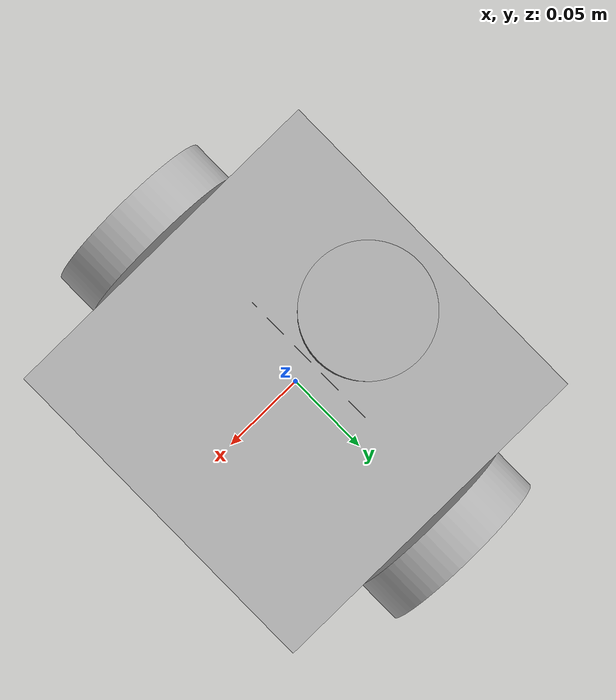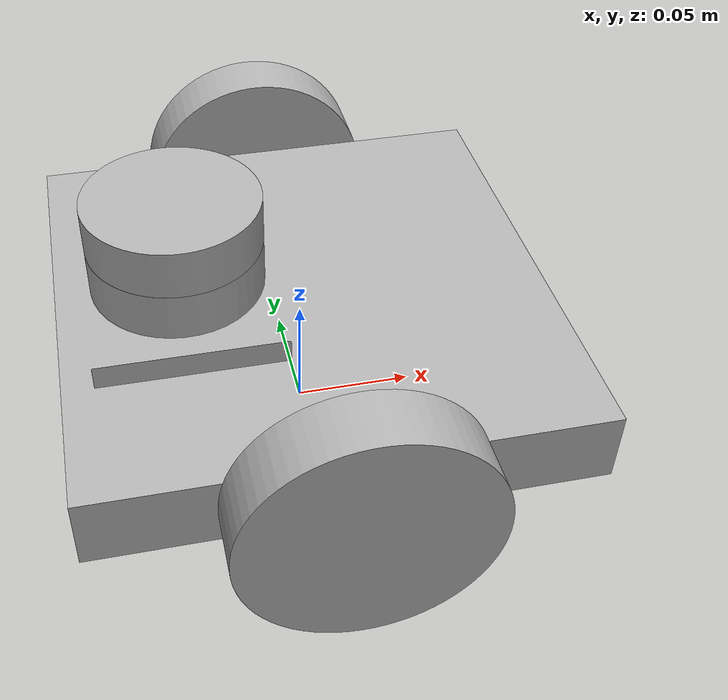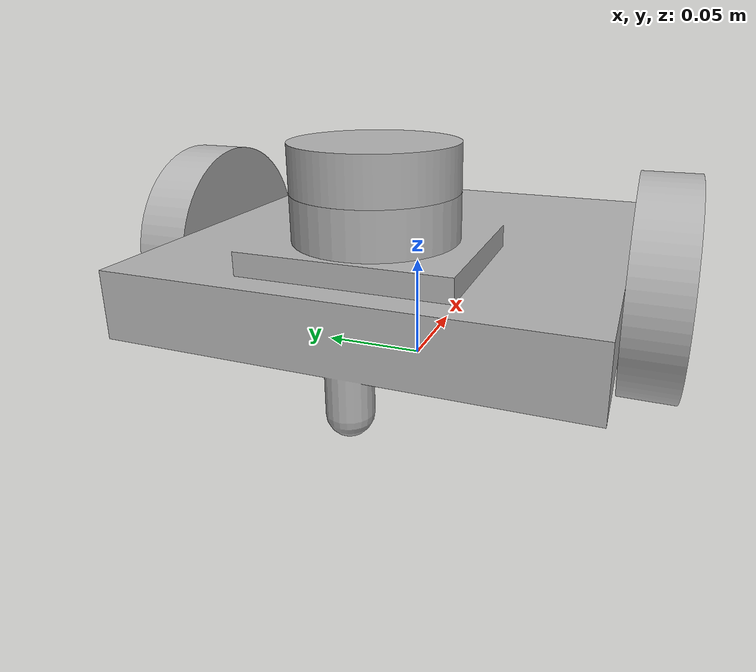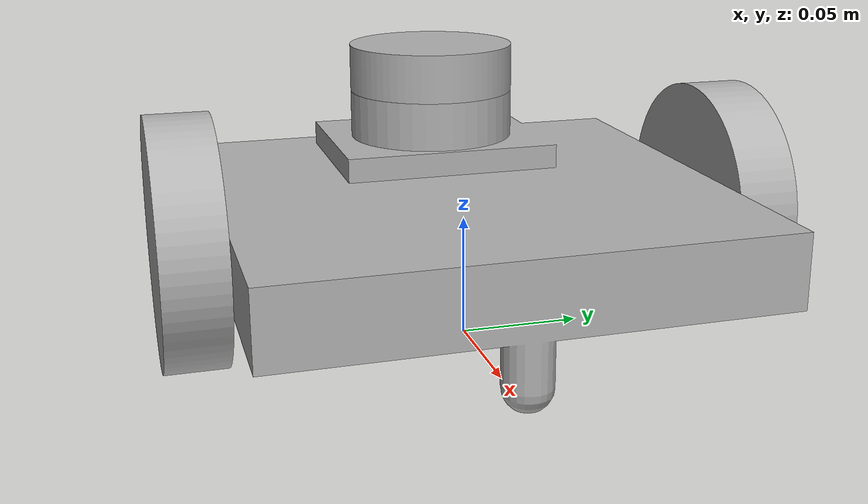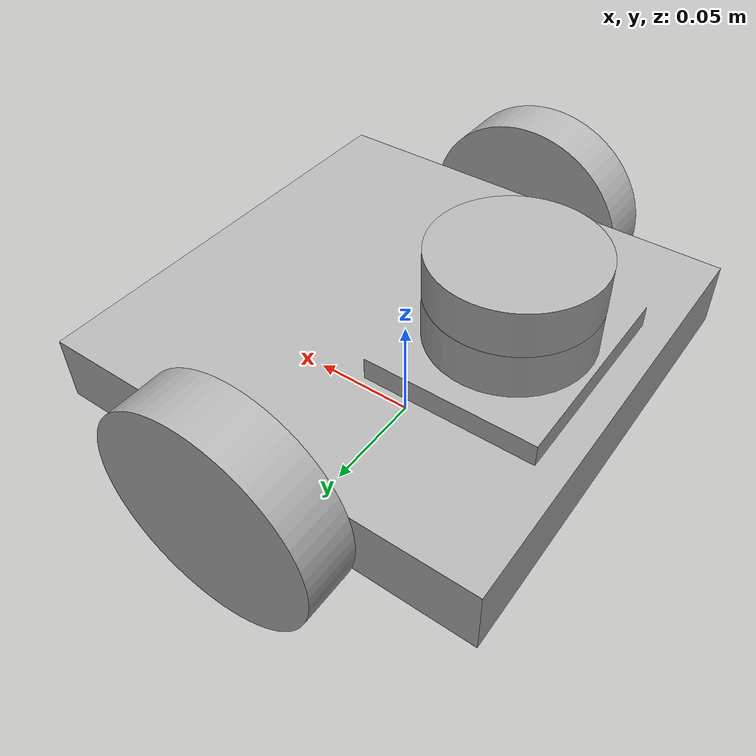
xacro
<?xml version="1.0" ?>
<robot name="bot1" xmlns:xacro="http://www.ros.org/wiki/xacro">

<xacro:include filename="$(find bot1_description)/urdf/materials.xacro" />
<xacro:include filename="$(find bot1_description)/urdf/bot1.trans" />
<xacro:include filename="$(find bot1_description)/urdf/bot1.gazebo" />
<link name="base_link">
  <inertial>
    <origin xyz="-0.005294365441438707 1.5998549118382242e-16 0.05251302634949963" rpy="0 0 0"/>
    <mass value="1.446227719894824"/>
    <inertia ixx="0.004554" iyy="0.005016" izz="0.00909" ixy="0.0" iyz="-0.0" ixz="0.000195"/>
  </inertial>
  <visual>
    <origin xyz="0 0 0" rpy="0 0 0"/>
    <geometry>
      <mesh filename="package://bot1_description/meshes/base_link.stl" scale="0.001 0.001 0.001"/>
    </geometry>
    <material name="silver"/>
  </visual>
  <collision>
    <origin xyz="0 0 0" rpy="0 0 0"/>
    <geometry>
      <mesh filename="package://bot1_description/meshes/base_link.stl" scale="0.001 0.001 0.001"/>
    </geometry>
  </collision>
</link>

<link name="left_wheel_1">
  <inertial>
    <origin xyz="1.737006930036608e-17 0.012499999999999997 0.0" rpy="0 0 0"/>
    <mass value="0.18260507298990675"/>
    <inertia ixx="0.000124" iyy="0.000228" izz="0.000124" ixy="-0.0" iyz="0.0" ixz="0.0"/>
  </inertial>
  <visual>
    <origin xyz="-0.0 -0.1 -0.05" rpy="0 0 0"/>
    <geometry>
      <mesh filename="package://bot1_description/meshes/left_wheel_1.stl" scale="0.001 0.001 0.001"/>
    </geometry>
    <material name="silver"/>
  </visual>
  <collision>
    <origin xyz="-0.0 -0.1 -0.05" rpy="0 0 0"/>
    <geometry>
      <mesh filename="package://bot1_description/meshes/left_wheel_1.stl" scale="0.001 0.001 0.001"/>
    </geometry>
  </collision>
</link>

<link name="right_wheel_1">
  <inertial>
    <origin xyz="1.737006930036608e-17 -0.012499999999999997 0.0" rpy="0 0 0"/>
    <mass value="0.18260507298990675"/>
    <inertia ixx="0.000124" iyy="0.000228" izz="0.000124" ixy="0.0" iyz="-0.0" ixz="0.0"/>
  </inertial>
  <visual>
    <origin xyz="-0.0 0.1 -0.05" rpy="0 0 0"/>
    <geometry>
      <mesh filename="package://bot1_description/meshes/right_wheel_1.stl" scale="0.001 0.001 0.001"/>
    </geometry>
    <material name="silver"/>
  </visual>
  <collision>
    <origin xyz="-0.0 0.1 -0.05" rpy="0 0 0"/>
    <geometry>
      <mesh filename="package://bot1_description/meshes/right_wheel_1.stl" scale="0.001 0.001 0.001"/>
    </geometry>
  </collision>
</link>

<link name="lidar_1">
  <inertial>
    <origin xyz="7.632783294297951e-16 3.1239537899893077e-15 0.009999999999997927" rpy="0 0 0"/>
    <mass value="0.08158716121372694"/>
    <inertia ixx="2.8e-05" iyy="2.8e-05" izz="5e-05" ixy="0.0" iyz="0.0" ixz="0.0"/>
  </inertial>
  <visual>
    <origin xyz="0.05 -0.0 -0.095" rpy="0 0 0"/>
    <geometry>
      <mesh filename="package://bot1_description/meshes/lidar_1.stl" scale="0.001 0.001 0.001"/>
    </geometry>
    <material name="silver"/>
  </visual>
  <collision>
    <origin xyz="0.05 -0.0 -0.095" rpy="0 0 0"/>
    <geometry>
      <mesh filename="package://bot1_description/meshes/lidar_1.stl" scale="0.001 0.001 0.001"/>
    </geometry>
  </collision>
</link>

<joint name="Rev1" type="continuous">
  <origin xyz="0.0 0.1 0.05" rpy="0 0 0"/>
  <parent link="base_link"/>
  <child link="left_wheel_1"/>
  <axis xyz="0.0 1.0 0.0"/>
</joint>

<joint name="Rev2" type="continuous">
  <origin xyz="0.0 -0.1 0.05" rpy="0 0 0"/>
  <parent link="base_link"/>
  <child link="right_wheel_1"/>
  <axis xyz="0.0 -1.0 0.0"/>
</joint>

<joint name="Rigid3" type="fixed">
  <origin xyz="-0.05 0.0 0.095" rpy="0 0 0"/>
  <parent link="base_link"/>
  <child link="lidar_1"/>
</joint>

</robot>

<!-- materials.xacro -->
<robot name="bot1" xmlns:xacro="http://www.ros.org/wiki/xacro" >

<material name="silver">
  <color rgba="0.700 0.700 0.700 1.000"/>
</material>

</robot>

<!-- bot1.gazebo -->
<robot name="bot1" xmlns:xacro="http://www.ros.org/wiki/xacro" >

<xacro:property name="body_color" value="Gazebo/Silver" />

<gazebo>
  <plugin name="control" filename="libgazebo_ros_control.so"/>
</gazebo>
<gazebo reference="base_link">
  <material>${body_color}</material>
  <mu1>0.2</mu1>
  <mu2>0.2</mu2>
  <selfCollide>true</selfCollide>
  <gravity>true</gravity>
</gazebo>

<gazebo reference="left_wheel_1">
  <material>${body_color}</material>
  <mu1>0.2</mu1>
  <mu2>0.2</mu2>
  <selfCollide>true</selfCollide>
</gazebo>

<gazebo reference="right_wheel_1">
  <material>${body_color}</material>
  <mu1>0.2</mu1>
  <mu2>0.2</mu2>
  <selfCollide>true</selfCollide>
</gazebo>

<gazebo reference="lidar_1">
  <material>${body_color}</material>
  <mu1>0.2</mu1>
  <mu2>0.2</mu2>
  <selfCollide>true</selfCollide>
</gazebo>

</robot>
